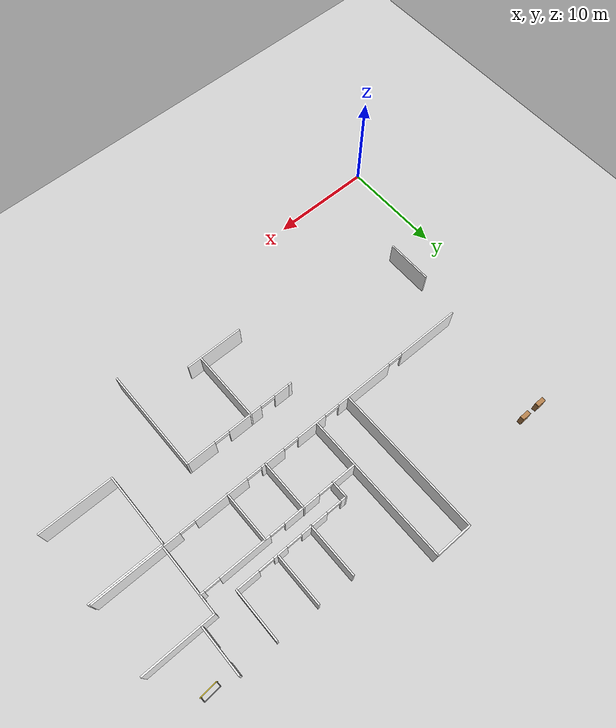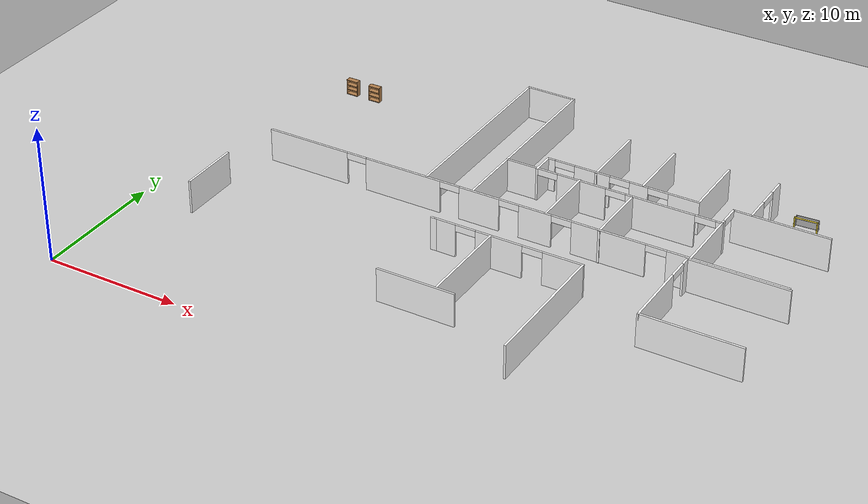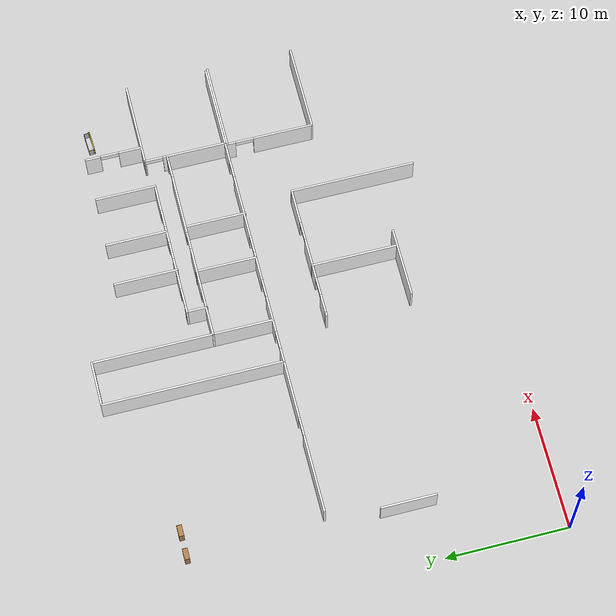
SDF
<sdf version="1.6">
 <world name="default">
  <model name="ground_plane">
   <static>1</static>
   <link name="link">
    <collision name="collision">
     <geometry><plane><normal>0 0 1</normal><size>100 100</size></plane></geometry>
     <surface><friction><ode><mu>100</mu><mu2>50</mu2></ode></friction></surface>
    </collision>
    <visual name="visual">
     <cast_shadows>0</cast_shadows>
     <geometry><plane><normal>0 0 1</normal><size>100 100</size></plane></geometry>
     <material>
      <script>
       <uri>model://office_env/materials/scripts</uri>
       <uri>model://office_env/materials/textures</uri>
       <name>wall</name>
      </script>
     </material>
    </visual>
   </link>
  </model>
  <model name="aule_N">
   <pose>0.1887 -1.4289 0 0 -0 0</pose>
   <link name="Wall_102">
    <collision name="Wall_102_Collision">
     <geometry><box><size>10.25 0.15 2.5</size></box></geometry>
     <pose>0 0 1.25 0 -0 0</pose>
    </collision>
    <visual name="Wall_102_Visual">
     <pose>0 0 1.25 0 -0 0</pose>
     <geometry><box><size>10.25 0.15 2.5</size></box></geometry>
     <material>
      <script>
       <uri>model://office_env/materials/scripts</uri>
       <uri>model://office_env/materials/textures</uri>
       <name>wall</name>
      </script>
      <ambient>1 1 1 1</ambient>
     </material>
    </visual>
    <pose>31.8169 10.3497 0 0 -0 1.5708</pose>
   </link>
   <link name="Wall_103">
    <pose>26.3919 15.3997 0 0 -0 3.14159</pose>
    <visual name="Wall_103_Visual_0">
     <pose>-4.01282 0 1.25 0 -0 0</pose>
     <geometry><box><size>2.97436 0.15 2.5</size></box></geometry>
     <material>
      <script>
       <uri>model://office_env/materials/scripts</uri>
       <uri>model://office_env/materials/textures</uri>
       <name>wall</name>
      </script>
      <ambient>1 1 1 1</ambient>
     </material>
    </visual>
    <collision name="Wall_103_Collision_0">
     <geometry><box><size>2.97436 0.15 2.5</size></box></geometry>
     <pose>-4.01282 0 1.25 0 -0 0</pose>
    </collision>
    <visual name="Wall_103_Visual_1">
     <pose>0.712222 0 1.25 0 -0 0</pose>
     <geometry><box><size>3.47573 0.15 2.5</size></box></geometry>
     <material>
      <script>
       <uri>model://office_env/materials/scripts</uri>
       <uri>model://office_env/materials/textures</uri>
       <name>wall</name>
      </script>
      <ambient>1 1 1 1</ambient>
     </material>
    </visual>
    <collision name="Wall_103_Collision_1">
     <geometry><box><size>3.47573 0.15 2.5</size></box></geometry>
     <pose>0.712222 0 1.25 0 -0 0</pose>
    </collision>
    <visual name="Wall_103_Visual_2">
     <pose>4.72504 0 1.25 0 -0 0</pose>
     <geometry><box><size>1.54991 0.15 2.5</size></box></geometry>
     <material>
      <script>
       <uri>model://office_env/materials/scripts</uri>
       <uri>model://office_env/materials/textures</uri>
       <name>wall</name>
      </script>
      <ambient>1 1 1 1</ambient>
     </material>
    </visual>
    <collision name="Wall_103_Collision_2">
     <geometry><box><size>1.54991 0.15 2.5</size></box></geometry>
     <pose>4.72504 0 1.25 0 -0 0</pose>
    </collision>
    <visual name="Wall_103_Visual_3">
     <pose>-1.77564 0 2.25 0 -0 0</pose>
     <geometry><box><size>1.5 0.15 0.5</size></box></geometry>
     <material>
      <script>
       <uri>model://office_env/materials/scripts</uri>
       <uri>model://office_env/materials/textures</uri>
       <name>wall</name>
      </script>
      <ambient>1 1 1 1</ambient>
     </material>
    </visual>
    <collision name="Wall_103_Collision_3">
     <geometry><box><size>1.5 0.15 0.5</size></box></geometry>
     <pose>-1.77564 0 2.25 0 -0 0</pose>
    </collision>
    <visual name="Wall_103_Visual_4">
     <pose>3.20009 0 2.25 0 -0 0</pose>
     <geometry><box><size>1.5 0.15 0.5</size></box></geometry>
     <material>
      <script>
       <uri>model://office_env/materials/scripts</uri>
       <uri>model://office_env/materials/textures</uri>
       <name>wall</name>
      </script>
      <ambient>1 1 1 1</ambient>
     </material>
    </visual>
    <collision name="Wall_103_Collision_4">
     <geometry><box><size>1.5 0.15 0.5</size></box></geometry>
     <pose>3.20009 0 2.25 0 -0 0</pose>
    </collision>
   </link>
   <link name="Wall_104">
    <collision name="Wall_104_Collision">
     <geometry><box><size>0.5 0.15 2.5</size></box></geometry>
     <pose>0 0 1.25 0 -0 0</pose>
    </collision>
    <visual name="Wall_104_Visual">
     <pose>0 0 1.25 0 -0 0</pose>
     <geometry><box><size>0.5 0.15 2.5</size></box></geometry>
     <material>
      <script>
       <uri>model://office_env/materials/scripts</uri>
       <uri>model://office_env/materials/textures</uri>
       <name>wall</name>
      </script>
      <ambient>1 1 1 1</ambient>
     </material>
    </visual>
    <pose>20.7919 15.3997 0 0 -0 3.14159</pose>
   </link>
   <link name="Wall_106">
    <collision name="Wall_106_Collision">
     <geometry><box><size>7 0.15 2.5</size></box></geometry>
     <pose>0 0 1.25 0 -0 0</pose>
    </collision>
    <visual name="Wall_106_Visual">
     <pose>0 0 1.25 0 -0 0</pose>
     <geometry><box><size>7 0.15 2.5</size></box></geometry>
     <material>
      <script>
       <uri>model://office_env/materials/scripts</uri>
       <uri>model://office_env/materials/textures</uri>
       <name>wall</name>
      </script>
      <ambient>1 1 1 1</ambient>
     </material>
    </visual>
    <pose>25.0644 11.9766 0 0 0 -1.5708</pose>
   </link>
   <link name="Wall_119">
    <pose>24.6226 19.6001 0 0 -0 0</pose>
    <visual name="Wall_119_Visual_0">
     <pose>-16.4435 0 1.25 0 -0 0</pose>
     <geometry><box><size>6.36296 0.15 2.5</size></box></geometry>
     <material>
      <script>
       <uri>model://office_env/materials/scripts</uri>
       <uri>model://office_env/materials/textures</uri>
       <name>wall</name>
      </script>
      <ambient>1 1 1 1</ambient>
     </material>
    </visual>
    <collision name="Wall_119_Collision_0">
     <geometry><box><size>6.36296 0.15 2.5</size></box></geometry>
     <pose>-16.4435 0 1.25 0 -0 0</pose>
    </collision>
    <visual name="Wall_119_Visual_1">
     <pose>-8.80227 0 1.25 0 -0 0</pose>
     <geometry><box><size>5.91956 0.15 2.5</size></box></geometry>
     <material>
      <script>
       <uri>model://office_env/materials/scripts</uri>
       <uri>model://office_env/materials/textures</uri>
       <name>wall</name>
      </script>
      <ambient>1 1 1 1</ambient>
     </material>
    </visual>
    <collision name="Wall_119_Collision_1">
     <geometry><box><size>5.91956 0.15 2.5</size></box></geometry>
     <pose>-8.80227 0 1.25 0 -0 0</pose>
    </collision>
    <visual name="Wall_119_Visual_2">
     <pose>-2.80072 0 1.25 0 -0 0</pose>
     <geometry><box><size>3.08352 0.15 2.5</size></box></geometry>
     <material>
      <script>
       <uri>model://office_env/materials/scripts</uri>
       <uri>model://office_env/materials/textures</uri>
       <name>wall</name>
      </script>
      <ambient>1 1 1 1</ambient>
     </material>
    </visual>
    <collision name="Wall_119_Collision_2">
     <geometry><box><size>3.08352 0.15 2.5</size></box></geometry>
     <pose>-2.80072 0 1.25 0 -0 0</pose>
    </collision>
    <visual name="Wall_119_Visual_3">
     <pose>1.4683 0 1.25 0 -0 0</pose>
     <geometry><box><size>2.45453 0.15 2.5</size></box></geometry>
     <material>
      <script>
       <uri>model://office_env/materials/scripts</uri>
       <uri>model://office_env/materials/textures</uri>
       <name>wall</name>
      </script>
      <ambient>1 1 1 1</ambient>
     </material>
    </visual>
    <collision name="Wall_119_Collision_3">
     <geometry><box><size>2.45453 0.15 2.5</size></box></geometry>
     <pose>1.4683 0 1.25 0 -0 0</pose>
    </collision>
    <visual name="Wall_119_Visual_4">
     <pose>6.88834 0 1.25 0 -0 0</pose>
     <geometry><box><size>5.38554 0.15 2.5</size></box></geometry>
     <material>
      <script>
       <uri>model://office_env/materials/scripts</uri>
       <uri>model://office_env/materials/textures</uri>
       <name>wall</name>
      </script>
      <ambient>1 1 1 1</ambient>
     </material>
    </visual>
    <collision name="Wall_119_Collision_4">
     <geometry><box><size>5.38554 0.15 2.5</size></box></geometry>
     <pose>6.88834 0 1.25 0 -0 0</pose>
    </collision>
    <visual name="Wall_119_Visual_5">
     <pose>15.3531 0 1.25 0 -0 0</pose>
     <geometry><box><size>8.54389 0.15 2.5</size></box></geometry>
     <material>
      <script>
       <uri>model://office_env/materials/scripts</uri>
       <uri>model://office_env/materials/textures</uri>
       <name>wall</name>
      </script>
      <ambient>1 1 1 1</ambient>
     </material>
    </visual>
    <collision name="Wall_119_Collision_5">
     <geometry><box><size>8.54389 0.15 2.5</size></box></geometry>
     <pose>15.3531 0 1.25 0 -0 0</pose>
    </collision>
    <visual name="Wall_119_Visual_6">
     <pose>-12.512 0 2.25 0 -0 0</pose>
     <geometry><box><size>1.5 0.15 0.5</size></box></geometry>
     <material>
      <script>
       <uri>model://office_env/materials/scripts</uri>
       <uri>model://office_env/materials/textures</uri>
       <name>wall</name>
      </script>
      <ambient>1 1 1 1</ambient>
     </material>
    </visual>
    <collision name="Wall_119_Collision_6">
     <geometry><box><size>1.5 0.15 0.5</size></box></geometry>
     <pose>-12.512 0 2.25 0 -0 0</pose>
    </collision>
    <visual name="Wall_119_Visual_7">
     <pose>-5.09248 0 2.25 0 -0 0</pose>
     <geometry><box><size>1.5 0.15 0.5</size></box></geometry>
     <material>
      <script>
       <uri>model://office_env/materials/scripts</uri>
       <uri>model://office_env/materials/textures</uri>
       <name>wall</name>
      </script>
      <ambient>1 1 1 1</ambient>
     </material>
    </visual>
    <collision name="Wall_119_Collision_7">
     <geometry><box><size>1.5 0.15 0.5</size></box></geometry>
     <pose>-5.09248 0 2.25 0 -0 0</pose>
    </collision>
    <visual name="Wall_119_Visual_8">
     <pose>-0.508963 0 2.25 0 -0 0</pose>
     <geometry><box><size>1.5 0.15 0.5</size></box></geometry>
     <material>
      <script>
       <uri>model://office_env/materials/scripts</uri>
       <uri>model://office_env/materials/textures</uri>
       <name>wall</name>
      </script>
      <ambient>1 1 1 1</ambient>
     </material>
    </visual>
    <collision name="Wall_119_Collision_8">
     <geometry><box><size>1.5 0.15 0.5</size></box></geometry>
     <pose>-0.508963 0 2.25 0 -0 0</pose>
    </collision>
    <visual name="Wall_119_Visual_9">
     <pose>3.44557 0 2.25 0 -0 0</pose>
     <geometry><box><size>1.5 0.15 0.5</size></box></geometry>
     <material>
      <script>
       <uri>model://office_env/materials/scripts</uri>
       <uri>model://office_env/materials/textures</uri>
       <name>wall</name>
      </script>
      <ambient>1 1 1 1</ambient>
     </material>
    </visual>
    <collision name="Wall_119_Collision_9">
     <geometry><box><size>1.5 0.15 0.5</size></box></geometry>
     <pose>3.44557 0 2.25 0 -0 0</pose>
    </collision>
    <visual name="Wall_119_Visual_10">
     <pose>10.3311 0 2.25 0 -0 0</pose>
     <geometry><box><size>1.5 0.15 0.5</size></box></geometry>
     <material>
      <script>
       <uri>model://office_env/materials/scripts</uri>
       <uri>model://office_env/materials/textures</uri>
       <name>wall</name>
      </script>
      <ambient>1 1 1 1</ambient>
     </material>
    </visual>
    <collision name="Wall_119_Collision_10">
     <geometry><box><size>1.5 0.15 0.5</size></box></geometry>
     <pose>10.3311 0 2.25 0 -0 0</pose>
    </collision>
   </link>
   <link name="Wall_142">
    <collision name="Wall_142_Collision">
     <geometry><box><size>14.75 0.15 2.5</size></box></geometry>
     <pose>0 0 1.25 0 -0 0</pose>
    </collision>
    <visual name="Wall_142_Visual">
     <pose>0 0 1.25 0 -0 0</pose>
     <geometry><box><size>14.75 0.15 2.5</size></box></geometry>
     <material>
      <script>
       <uri>model://office_env/materials/scripts</uri>
       <uri>model://office_env/materials/textures</uri>
       <name>wall</name>
      </script>
      <ambient>1 1 1 1</ambient>
     </material>
    </visual>
    <pose>17.6842 26.9006 0 0 -0 1.5708</pose>
   </link>
   <link name="Wall_143">
    <collision name="Wall_143_Collision">
     <geometry><box><size>3.75 0.15 2.5</size></box></geometry>
     <pose>0 0 1.25 0 -0 0</pose>
    </collision>
    <visual name="Wall_143_Visual">
     <pose>0 0 1.25 0 -0 0</pose>
     <geometry><box><size>3.75 0.15 2.5</size></box></geometry>
     <material>
      <script>
       <uri>model://office_env/materials/scripts</uri>
       <uri>model://office_env/materials/textures</uri>
       <name>wall</name>
      </script>
      <ambient>1 1 1 1</ambient>
     </material>
    </visual>
    <pose>19.4842 34.2006 0 0 -0 0</pose>
   </link>
   <link name="Wall_144">
    <collision name="Wall_144_Collision">
     <geometry><box><size>14.75 0.15 2.5</size></box></geometry>
     <pose>0 0 1.25 0 -0 0</pose>
    </collision>
    <visual name="Wall_144_Visual">
     <pose>0 0 1.25 0 -0 0</pose>
     <geometry><box><size>14.75 0.15 2.5</size></box></geometry>
     <material>
      <script>
       <uri>model://office_env/materials/scripts</uri>
       <uri>model://office_env/materials/textures</uri>
       <name>wall</name>
      </script>
      <ambient>1 1 1 1</ambient>
     </material>
    </visual>
    <pose>21.2842 26.9006 0 0 0 -1.5708</pose>
   </link>
   <link name="Wall_149">
    <collision name="Wall_149_Collision">
     <geometry><box><size>4.5 0.15 2.5</size></box></geometry>
     <pose>0 0 1.25 0 -0 0</pose>
    </collision>
    <visual name="Wall_149_Visual">
     <pose>0 0 1.25 0 -0 0</pose>
     <geometry><box><size>4.5 0.15 2.5</size></box></geometry>
     <material>
      <script>
       <uri>model://office_env/materials/scripts</uri>
       <uri>model://office_env/materials/textures</uri>
       <name>wall</name>
      </script>
      <ambient>1 1 1 1</ambient>
     </material>
    </visual>
    <pose>4.2241 13.1481 0 0 -0 1.5708</pose>
   </link>
   <link name="Wall_151">
    <pose>37.2203 15.8955 0 0 -0 1.5708</pose>
    <visual name="Wall_151_Visual_0">
     <pose>-1.12447 0 1.25 0 -0 0</pose>
     <geometry><box><size>5.00105 0.15 2.5</size></box></geometry>
     <material>
      <script>
       <uri>model://office_env/materials/scripts</uri>
       <uri>model://office_env/materials/textures</uri>
       <name>wall</name>
      </script>
      <ambient>1 1 1 1</ambient>
     </material>
    </visual>
    <collision name="Wall_151_Collision_0">
     <geometry><box><size>5.00105 0.15 2.5</size></box></geometry>
     <pose>-1.12447 0 1.25 0 -0 0</pose>
    </collision>
    <visual name="Wall_151_Visual_1">
     <pose>3.25053 0 1.25 0 -0 0</pose>
     <geometry><box><size>0.748949 0.15 2.5</size></box></geometry>
     <material>
      <script>
       <uri>model://office_env/materials/scripts</uri>
       <uri>model://office_env/materials/textures</uri>
       <name>wall</name>
      </script>
      <ambient>1 1 1 1</ambient>
     </material>
    </visual>
    <collision name="Wall_151_Collision_1">
     <geometry><box><size>0.748949 0.15 2.5</size></box></geometry>
     <pose>3.25053 0 1.25 0 -0 0</pose>
    </collision>
    <visual name="Wall_151_Visual_2">
     <pose>2.12605 0 2.25 0 -0 0</pose>
     <geometry><box><size>1.5 0.15 0.5</size></box></geometry>
     <material>
      <script>
       <uri>model://office_env/materials/scripts</uri>
       <uri>model://office_env/materials/textures</uri>
       <name>wall</name>
      </script>
      <ambient>1 1 1 1</ambient>
     </material>
    </visual>
    <collision name="Wall_151_Collision_2">
     <geometry><box><size>1.5 0.15 0.5</size></box></geometry>
     <pose>2.12605 0 2.25 0 -0 0</pose>
    </collision>
   </link>
   <link name="Wall_152">
    <collision name="Wall_152_Collision">
     <geometry><box><size>7.25 0.15 2.5</size></box></geometry>
     <pose>0 0 1.25 0 -0 0</pose>
    </collision>
    <visual name="Wall_152_Visual">
     <pose>0 0 1.25 0 -0 0</pose>
     <geometry><box><size>7.25 0.15 2.5</size></box></geometry>
     <material>
      <script>
       <uri>model://office_env/materials/scripts</uri>
       <uri>model://office_env/materials/textures</uri>
       <name>wall</name>
      </script>
      <ambient>1 1 1 1</ambient>
     </material>
    </visual>
    <pose>40.7703 19.4455 0 0 -0 0</pose>
   </link>
   <link name="Wall_154">
    <pose>29.3256 24.4418 0 0 -0 0</pose>
    <visual name="Wall_154_Visual_0">
     <pose>-6.88088 0 1.25 0 -0 0</pose>
     <geometry><box><size>2.48824 0.15 2.5</size></box></geometry>
     <material>
      <script>
       <uri>model://office_env/materials/scripts</uri>
       <uri>model://office_env/materials/textures</uri>
       <name>wall</name>
      </script>
      <ambient>1 1 1 1</ambient>
     </material>
    </visual>
    <collision name="Wall_154_Collision_0">
     <geometry><box><size>2.48824 0.15 2.5</size></box></geometry>
     <pose>-6.88088 0 1.25 0 -0 0</pose>
    </collision>
    <visual name="Wall_154_Visual_1">
     <pose>-2.30449 0 1.25 0 -0 0</pose>
     <geometry><box><size>3.66454 0.15 2.5</size></box></geometry>
     <material>
      <script>
       <uri>model://office_env/materials/scripts</uri>
       <uri>model://office_env/materials/textures</uri>
       <name>wall</name>
      </script>
      <ambient>1 1 1 1</ambient>
     </material>
    </visual>
    <collision name="Wall_154_Collision_1">
     <geometry><box><size>3.66454 0.15 2.5</size></box></geometry>
     <pose>-2.30449 0 1.25 0 -0 0</pose>
    </collision>
    <visual name="Wall_154_Visual_2">
     <pose>3.58098 0 1.25 0 -0 0</pose>
     <geometry><box><size>5.10639 0.15 2.5</size></box></geometry>
     <material>
      <script>
       <uri>model://office_env/materials/scripts</uri>
       <uri>model://office_env/materials/textures</uri>
       <name>wall</name>
      </script>
      <ambient>1 1 1 1</ambient>
     </material>
    </visual>
    <collision name="Wall_154_Collision_2">
     <geometry><box><size>5.10639 0.15 2.5</size></box></geometry>
     <pose>3.58098 0 1.25 0 -0 0</pose>
    </collision>
    <visual name="Wall_154_Visual_3">
     <pose>7.87959 0 1.25 0 -0 0</pose>
     <geometry><box><size>0.490824 0.15 2.5</size></box></geometry>
     <material>
      <script>
       <uri>model://office_env/materials/scripts</uri>
       <uri>model://office_env/materials/textures</uri>
       <name>wall</name>
      </script>
      <ambient>1 1 1 1</ambient>
     </material>
    </visual>
    <collision name="Wall_154_Collision_3">
     <geometry><box><size>0.490824 0.15 2.5</size></box></geometry>
     <pose>7.87959 0 1.25 0 -0 0</pose>
    </collision>
    <visual name="Wall_154_Visual_4">
     <pose>-4.88676 0 2.25 0 -0 0</pose>
     <geometry><box><size>1.5 0.15 0.5</size></box></geometry>
     <material>
      <script>
       <uri>model://office_env/materials/scripts</uri>
       <uri>model://office_env/materials/textures</uri>
       <name>wall</name>
      </script>
      <ambient>1 1 1 1</ambient>
     </material>
    </visual>
    <collision name="Wall_154_Collision_4">
     <geometry><box><size>1.5 0.15 0.5</size></box></geometry>
     <pose>-4.88676 0 2.25 0 -0 0</pose>
    </collision>
    <visual name="Wall_154_Visual_5">
     <pose>0.277782 0 2.25 0 -0 0</pose>
     <geometry><box><size>1.5 0.15 0.5</size></box></geometry>
     <material>
      <script>
       <uri>model://office_env/materials/scripts</uri>
       <uri>model://office_env/materials/textures</uri>
       <name>wall</name>
      </script>
      <ambient>1 1 1 1</ambient>
     </material>
    </visual>
    <collision name="Wall_154_Collision_5">
     <geometry><box><size>1.5 0.15 0.5</size></box></geometry>
     <pose>0.277782 0 2.25 0 -0 0</pose>
    </collision>
    <visual name="Wall_154_Visual_6">
     <pose>6.88418 0 2.25 0 -0 0</pose>
     <geometry><box><size>1.5 0.15 0.5</size></box></geometry>
     <material>
      <script>
       <uri>model://office_env/materials/scripts</uri>
       <uri>model://office_env/materials/textures</uri>
       <name>wall</name>
      </script>
      <ambient>1 1 1 1</ambient>
     </material>
    </visual>
    <collision name="Wall_154_Collision_6">
     <geometry><box><size>1.5 0.15 0.5</size></box></geometry>
     <pose>6.88418 0 2.25 0 -0 0</pose>
    </collision>
   </link>
   <link name="Wall_155">
    <collision name="Wall_155_Collision">
     <geometry><box><size>5 0.15 2.5</size></box></geometry>
     <pose>0 0 1.25 0 -0 0</pose>
    </collision>
    <visual name="Wall_155_Visual">
     <pose>0 0 1.25 0 -0 0</pose>
     <geometry><box><size>5 0.15 2.5</size></box></geometry>
     <material>
      <script>
       <uri>model://office_env/materials/scripts</uri>
       <uri>model://office_env/materials/textures</uri>
       <name>wall</name>
      </script>
      <ambient>1 1 1 1</ambient>
     </material>
    </visual>
    <pose>37.3756 22.0168 0 0 0 -1.5708</pose>
   </link>
   <link name="Wall_157">
    <collision name="Wall_157_Collision">
     <geometry><box><size>5 0.15 2.5</size></box></geometry>
     <pose>0 0 1.25 0 -0 0</pose>
    </collision>
    <visual name="Wall_157_Visual">
     <pose>0 0 1.25 0 -0 0</pose>
     <geometry><box><size>5 0.15 2.5</size></box></geometry>
     <material>
      <script>
       <uri>model://office_env/materials/scripts</uri>
       <uri>model://office_env/materials/textures</uri>
       <name>wall</name>
      </script>
      <ambient>1 1 1 1</ambient>
     </material>
    </visual>
    <pose>26.8585 22.0634 0 0 0 -1.5708</pose>
   </link>
   <link name="Wall_159">
    <collision name="Wall_159_Collision">
     <geometry><box><size>5 0.15 2.5</size></box></geometry>
     <pose>0 0 1.25 0 -0 0</pose>
    </collision>
    <visual name="Wall_159_Visual">
     <pose>0 0 1.25 0 -0 0</pose>
     <geometry><box><size>5 0.15 2.5</size></box></geometry>
     <material>
      <script>
       <uri>model://office_env/materials/scripts</uri>
       <uri>model://office_env/materials/textures</uri>
       <name>wall</name>
      </script>
      <ambient>1 1 1 1</ambient>
     </material>
    </visual>
    <pose>30.8596 21.9703 0 0 0 -1.5708</pose>
   </link>
   <link name="Wall_161">
    <pose>37.3756 25.3668 0 0 -0 1.5708</pose>
    <visual name="Wall_161_Visual_0">
     <pose>-0.779213 0 1.25 0 -0 0</pose>
     <geometry><box><size>0.441574 0.15 2.5</size></box></geometry>
     <material>
      <script>
       <uri>model://office_env/materials/scripts</uri>
       <uri>model://office_env/materials/textures</uri>
       <name>wall</name>
      </script>
      <ambient>1 1 1 1</ambient>
     </material>
    </visual>
    <collision name="Wall_161_Collision_0">
     <geometry><box><size>0.441574 0.15 2.5</size></box></geometry>
     <pose>-0.779213 0 1.25 0 -0 0</pose>
    </collision>
    <visual name="Wall_161_Visual_1">
     <pose>0.970787 0 1.25 0 -0 0</pose>
     <geometry><box><size>0.058426 0.15 2.5</size></box></geometry>
     <material>
      <script>
       <uri>model://office_env/materials/scripts</uri>
       <uri>model://office_env/materials/textures</uri>
       <name>wall</name>
      </script>
      <ambient>1 1 1 1</ambient>
     </material>
    </visual>
    <collision name="Wall_161_Collision_1">
     <geometry><box><size>0.058426 0.15 2.5</size></box></geometry>
     <pose>0.970787 0 1.25 0 -0 0</pose>
    </collision>
    <visual name="Wall_161_Visual_2">
     <pose>0.191574 0 2.25 0 -0 0</pose>
     <geometry><box><size>1.5 0.15 0.5</size></box></geometry>
     <material>
      <script>
       <uri>model://office_env/materials/scripts</uri>
       <uri>model://office_env/materials/textures</uri>
       <name>wall</name>
      </script>
      <ambient>1 1 1 1</ambient>
     </material>
    </visual>
    <collision name="Wall_161_Collision_2">
     <geometry><box><size>1.5 0.15 0.5</size></box></geometry>
     <pose>0.191574 0 2.25 0 -0 0</pose>
    </collision>
   </link>
   <link name="Wall_172">
    <collision name="Wall_172_Collision">
     <geometry><box><size>1.75 0.15 2.5</size></box></geometry>
     <pose>0 0 1.25 0 -0 0</pose>
    </collision>
    <visual name="Wall_172_Visual">
     <pose>0 0 1.25 0 -0 0</pose>
     <geometry><box><size>1.75 0.15 2.5</size></box></geometry>
     <material>
      <script>
       <uri>model://office_env/materials/scripts</uri>
       <uri>model://office_env/materials/textures</uri>
       <name>wall</name>
      </script>
      <ambient>1 1 1 1</ambient>
     </material>
    </visual>
    <pose>23.6484 25.1953 0 0 -0 1.5708</pose>
   </link>
   <link name="Wall_173">
    <pose>29.3234 25.9953 0 0 -0 0</pose>
    <visual name="Wall_173_Visual_0">
     <pose>-5.43624 0 1.25 0 -0 0</pose>
     <geometry><box><size>0.627523 0.15 2.5</size></box></geometry>
     <material>
      <script>
       <uri>model://office_env/materials/scripts</uri>
       <uri>model://office_env/materials/textures</uri>
       <name>wall</name>
      </script>
      <ambient>1 1 1 1</ambient>
     </material>
    </visual>
    <collision name="Wall_173_Collision_0">
     <geometry><box><size>0.627523 0.15 2.5</size></box></geometry>
     <pose>-5.43624 0 1.25 0 -0 0</pose>
    </collision>
    <visual name="Wall_173_Visual_1">
     <pose>-2.27883 0 1.25 0 -0 0</pose>
     <geometry><box><size>2.6873 0.15 2.5</size></box></geometry>
     <material>
      <script>
       <uri>model://office_env/materials/scripts</uri>
       <uri>model://office_env/materials/textures</uri>
       <name>wall</name>
      </script>
      <ambient>1 1 1 1</ambient>
     </material>
    </visual>
    <collision name="Wall_173_Collision_1">
     <geometry><box><size>2.6873 0.15 2.5</size></box></geometry>
     <pose>-2.27883 0 1.25 0 -0 0</pose>
    </collision>
    <visual name="Wall_173_Visual_2">
     <pose>1.25706 0 1.25 0 -0 0</pose>
     <geometry><box><size>1.38448 0.15 2.5</size></box></geometry>
     <material>
      <script>
       <uri>model://office_env/materials/scripts</uri>
       <uri>model://office_env/materials/textures</uri>
       <name>wall</name>
      </script>
      <ambient>1 1 1 1</ambient>
     </material>
    </visual>
    <collision name="Wall_173_Collision_2">
     <geometry><box><size>1.38448 0.15 2.5</size></box></geometry>
     <pose>1.25706 0 1.25 0 -0 0</pose>
    </collision>
    <visual name="Wall_173_Visual_3">
     <pose>4.59965 0 1.25 0 -0 0</pose>
     <geometry><box><size>2.3007 0.15 2.5</size></box></geometry>
     <material>
      <script>
       <uri>model://office_env/materials/scripts</uri>
       <uri>model://office_env/materials/textures</uri>
       <name>wall</name>
      </script>
      <ambient>1 1 1 1</ambient>
     </material>
    </visual>
    <collision name="Wall_173_Collision_3">
     <geometry><box><size>2.3007 0.15 2.5</size></box></geometry>
     <pose>4.59965 0 1.25 0 -0 0</pose>
    </collision>
    <visual name="Wall_173_Visual_4">
     <pose>-4.37248 0 2.25 0 -0 0</pose>
     <geometry><box><size>1.5 0.15 0.5</size></box></geometry>
     <material>
      <script>
       <uri>model://office_env/materials/scripts</uri>
       <uri>model://office_env/materials/textures</uri>
       <name>wall</name>
      </script>
      <ambient>1 1 1 1</ambient>
     </material>
    </visual>
    <collision name="Wall_173_Collision_4">
     <geometry><box><size>1.5 0.15 0.5</size></box></geometry>
     <pose>-4.37248 0 2.25 0 -0 0</pose>
    </collision>
    <visual name="Wall_173_Visual_5">
     <pose>-0.185179 0 2.25 0 -0 0</pose>
     <geometry><box><size>1.5 0.15 0.5</size></box></geometry>
     <material>
      <script>
       <uri>model://office_env/materials/scripts</uri>
       <uri>model://office_env/materials/textures</uri>
       <name>wall</name>
      </script>
      <ambient>1 1 1 1</ambient>
     </material>
    </visual>
    <collision name="Wall_173_Collision_5">
     <geometry><box><size>1.5 0.15 0.5</size></box></geometry>
     <pose>-0.185179 0 2.25 0 -0 0</pose>
    </collision>
    <visual name="Wall_173_Visual_6">
     <pose>2.6993 0 2.25 0 -0 0</pose>
     <geometry><box><size>1.5 0.15 0.5</size></box></geometry>
     <material>
      <script>
       <uri>model://office_env/materials/scripts</uri>
       <uri>model://office_env/materials/textures</uri>
       <name>wall</name>
      </script>
      <ambient>1 1 1 1</ambient>
     </material>
    </visual>
    <collision name="Wall_173_Collision_6">
     <geometry><box><size>1.5 0.15 0.5</size></box></geometry>
     <pose>2.6993 0 2.25 0 -0 0</pose>
    </collision>
   </link>
   <link name="Wall_174">
    <collision name="Wall_174_Collision">
     <geometry><box><size>5 0.15 2.5</size></box></geometry>
     <pose>0 0 1.25 0 -0 0</pose>
    </collision>
    <visual name="Wall_174_Visual">
     <pose>0 0 1.25 0 -0 0</pose>
     <geometry><box><size>5 0.15 2.5</size></box></geometry>
     <material>
      <script>
       <uri>model://office_env/materials/scripts</uri>
       <uri>model://office_env/materials/textures</uri>
       <name>wall</name>
      </script>
      <ambient>1 1 1 1</ambient>
     </material>
    </visual>
    <pose>34.9984 28.4203 0 0 -0 1.5708</pose>
   </link>
   <link name="Wall_176">
    <collision name="Wall_176_Collision">
     <geometry><box><size>5.25 0.15 2.5</size></box></geometry>
     <pose>0 0 1.25 0 -0 0</pose>
    </collision>
    <visual name="Wall_176_Visual">
     <pose>0 0 1.25 0 -0 0</pose>
     <geometry><box><size>5.25 0.15 2.5</size></box></geometry>
     <material>
      <script>
       <uri>model://office_env/materials/scripts</uri>
       <uri>model://office_env/materials/textures</uri>
       <name>wall</name>
      </script>
      <ambient>1 1 1 1</ambient>
     </material>
    </visual>
    <pose>27.3703 28.4806 0 0 -0 1.5708</pose>
   </link>
   <link name="Wall_178">
    <collision name="Wall_178_Collision">
     <geometry><box><size>5 0.15 2.5</size></box></geometry>
     <pose>0 0 1.25 0 -0 0</pose>
    </collision>
    <visual name="Wall_178_Visual">
     <pose>0 0 1.25 0 -0 0</pose>
     <geometry><box><size>5 0.15 2.5</size></box></geometry>
     <material>
      <script>
       <uri>model://office_env/materials/scripts</uri>
       <uri>model://office_env/materials/textures</uri>
       <name>wall</name>
      </script>
      <ambient>1 1 1 1</ambient>
     </material>
    </visual>
    <pose>30.8596 28.4952 0 0 -0 1.5708</pose>
   </link>
   <link name="Wall_182">
    <collision name="Wall_182_Collision">
     <geometry><box><size>7 0.15 2.5</size></box></geometry>
     <pose>0 0 1.25 0 -0 0</pose>
    </collision>
    <visual name="Wall_182_Visual">
     <pose>0 0 1.25 0 -0 0</pose>
     <geometry><box><size>7 0.15 2.5</size></box></geometry>
     <material>
      <script>
       <uri>model://office_env/materials/scripts</uri>
       <uri>model://office_env/materials/textures</uri>
       <name>wall</name>
      </script>
      <ambient>1 1 1 1</ambient>
     </material>
    </visual>
    <pose>40.8006 26.2918 0 0 -0 0</pose>
   </link>
   <link name="Wall_184">
    <pose>38.6756 28.6028 0 0 -0 1.5708</pose>
    <visual name="Wall_184_Visual_0">
     <pose>-1.38657 0 1.25 0 -0 0</pose>
     <geometry><box><size>1.97686 0.15 2.5</size></box></geometry>
     <material>
      <script>
       <uri>model://office_env/materials/scripts</uri>
       <uri>model://office_env/materials/textures</uri>
       <name>wall</name>
      </script>
      <ambient>1 1 1 1</ambient>
     </material>
    </visual>
    <collision name="Wall_184_Collision_0">
     <geometry><box><size>1.97686 0.15 2.5</size></box></geometry>
     <pose>-1.38657 0 1.25 0 -0 0</pose>
    </collision>
    <visual name="Wall_184_Visual_1">
     <pose>1.73843 0 1.25 0 -0 0</pose>
     <geometry><box><size>1.27314 0.15 2.5</size></box></geometry>
     <material>
      <script>
       <uri>model://office_env/materials/scripts</uri>
       <uri>model://office_env/materials/textures</uri>
       <name>wall</name>
      </script>
      <ambient>1 1 1 1</ambient>
     </material>
    </visual>
    <collision name="Wall_184_Collision_1">
     <geometry><box><size>1.27314 0.15 2.5</size></box></geometry>
     <pose>1.73843 0 1.25 0 -0 0</pose>
    </collision>
    <visual name="Wall_184_Visual_2">
     <pose>0.351864 0 2.25 0 -0 0</pose>
     <geometry><box><size>1.5 0.15 0.5</size></box></geometry>
     <material>
      <script>
       <uri>model://office_env/materials/scripts</uri>
       <uri>model://office_env/materials/textures</uri>
       <name>wall</name>
      </script>
      <ambient>1 1 1 1</ambient>
     </material>
    </visual>
    <collision name="Wall_184_Collision_2">
     <geometry><box><size>1.5 0.15 0.5</size></box></geometry>
     <pose>0.351864 0 2.25 0 -0 0</pose>
    </collision>
   </link>
   <link name="Wall_38">
    <collision name="Wall_38_Collision">
     <geometry><box><size>7.25 0.15 2.5</size></box></geometry>
     <pose>0 0 1.25 0 -0 0</pose>
    </collision>
    <visual name="Wall_38_Visual">
     <pose>0 0 1.25 0 -0 0</pose>
     <geometry><box><size>7.25 0.15 2.5</size></box></geometry>
     <material>
      <script>
       <uri>model://office_env/materials/scripts</uri>
       <uri>model://office_env/materials/textures</uri>
       <name>wall</name>
      </script>
      <ambient>1 1 1 1</ambient>
     </material>
    </visual>
    <pose>40.7703 12.3455 0 0 -0 0</pose>
   </link>
   <link name="Wall_70">
    <collision name="Wall_70_Collision">
     <geometry><box><size>5.75 0.15 2.5</size></box></geometry>
     <pose>0 0 1.25 0 -0 0</pose>
    </collision>
    <visual name="Wall_70_Visual">
     <pose>0 0 1.25 0 -0 0</pose>
     <geometry><box><size>5.75 0.15 2.5</size></box></geometry>
     <material>
      <script>
       <uri>model://office_env/materials/scripts</uri>
       <uri>model://office_env/materials/textures</uri>
       <name>wall</name>
      </script>
      <ambient>1 1 1 1</ambient>
     </material>
    </visual>
    <pose>23.5919 8.40989 0 0 -0 0</pose>
   </link>
   <static>1</static>
  </model>
  <model name="bookshelf_1">
   <static>1</static>
   <link name="link">
    <inertial><mass>1</mass></inertial>
    <collision name="back">
     <pose>0 0.005 0.6 0 -0 0</pose>
     <geometry><box><size>0.9 0.01 1.2</size></box></geometry>
    </collision>
    <visual name="visual1">
     <pose>0 0.005 0.6 0 -0 0</pose>
     <geometry><box><size>0.9 0.01 1.2</size></box></geometry>
     <material>
      <script><uri>file://media/materials/scripts/gazebo.material</uri><name>Gazebo/Wood</name></script>
     </material>
    </visual>
    <collision name="left_side">
     <pose>0.45 -0.195 0.6 0 -0 0</pose>
     <geometry><box><size>0.02 0.4 1.2</size></box></geometry>
    </collision>
    <visual name="visual2">
     <pose>0.45 -0.195 0.6 0 -0 0</pose>
     <geometry><box><size>0.02 0.4 1.2</size></box></geometry>
     <material>
      <script><uri>file://media/materials/scripts/gazebo.material</uri><name>Gazebo/Wood</name></script>
     </material>
    </visual>
    <collision name="right_side">
     <pose>-0.45 -0.195 0.6 0 -0 0</pose>
     <geometry><box><size>0.02 0.4 1.2</size></box></geometry>
    </collision>
    <visual name="visual3">
     <pose>-0.45 -0.195 0.6 0 -0 0</pose>
     <geometry><box><size>0.02 0.4 1.2</size></box></geometry>
     <material>
      <script><uri>file://media/materials/scripts/gazebo.material</uri><name>Gazebo/Wood</name></script>
     </material>
    </visual>
    <collision name="bottom">
     <pose>0 -0.195 0.03 0 -0 0</pose>
     <geometry><box><size>0.88 0.4 0.06</size></box></geometry>
    </collision>
    <visual name="visual4">
     <pose>0 -0.195 0.03 0 -0 0</pose>
     <geometry><box><size>0.88 0.4 0.06</size></box></geometry>
     <material>
      <script><uri>file://media/materials/scripts/gazebo.material</uri><name>Gazebo/Wood</name></script>
     </material>
    </visual>
    <collision name="top">
     <pose>0 -0.195 1.19 0 -0 0</pose>
     <geometry><box><size>0.88 0.4 0.02</size></box></geometry>
    </collision>
    <visual name="visual5">
     <pose>0 -0.195 1.19 0 -0 0</pose>
     <geometry><box><size>0.88 0.4 0.02</size></box></geometry>
     <material>
      <script><uri>file://media/materials/scripts/gazebo.material</uri><name>Gazebo/Wood</name></script>
     </material>
    </visual>
    <collision name="low_shelf">
     <pose>0 -0.195 0.43 0 -0 0</pose>
     <geometry><box><size>0.88 0.4 0.02</size></box></geometry>
    </collision>
    <visual name="visual6">
     <pose>0 -0.195 0.43 0 -0 0</pose>
     <geometry><box><size>0.88 0.4 0.02</size></box></geometry>
     <material>
      <script><uri>file://media/materials/scripts/gazebo.material</uri><name>Gazebo/Wood</name></script>
     </material>
    </visual>
    <collision name="high_shelf">
     <pose>0 -0.195 0.8 0 -0 0</pose>
     <geometry><box><size>0.88 0.4 0.02</size></box></geometry>
    </collision>
    <visual name="visual7">
     <pose>0 -0.195 0.8 0 -0 0</pose>
     <geometry><box><size>0.88 0.4 0.02</size></box></geometry>
     <material>
      <script><uri>file://media/materials/scripts/gazebo.material</uri><name>Gazebo/Wood</name></script>
     </material>
    </visual>
   </link>
   <pose>6.87257 29.3246 0 0 -0 0</pose>
  </model>
  <model name="bookshelf_2">
   <static>1</static>
   <link name="link">
    <inertial><mass>1</mass></inertial>
    <collision name="back">
     <pose>0 0.005 0.6 0 -0 0</pose>
     <geometry><box><size>0.9 0.01 1.2</size></box></geometry>
    </collision>
    <visual name="visual1">
     <pose>0 0.005 0.6 0 -0 0</pose>
     <geometry><box><size>0.9 0.01 1.2</size></box></geometry>
     <material>
      <script><uri>file://media/materials/scripts/gazebo.material</uri><name>Gazebo/Wood</name></script>
     </material>
    </visual>
    <collision name="left_side">
     <pose>0.45 -0.195 0.6 0 -0 0</pose>
     <geometry><box><size>0.02 0.4 1.2</size></box></geometry>
    </collision>
    <visual name="visual2">
     <pose>0.45 -0.195 0.6 0 -0 0</pose>
     <geometry><box><size>0.02 0.4 1.2</size></box></geometry>
     <material>
      <script><uri>file://media/materials/scripts/gazebo.material</uri><name>Gazebo/Wood</name></script>
     </material>
    </visual>
    <collision name="right_side">
     <pose>-0.45 -0.195 0.6 0 -0 0</pose>
     <geometry><box><size>0.02 0.4 1.2</size></box></geometry>
    </collision>
    <visual name="visual3">
     <pose>-0.45 -0.195 0.6 0 -0 0</pose>
     <geometry><box><size>0.02 0.4 1.2</size></box></geometry>
     <material>
      <script><uri>file://media/materials/scripts/gazebo.material</uri><name>Gazebo/Wood</name></script>
     </material>
    </visual>
    <collision name="bottom">
     <pose>0 -0.195 0.03 0 -0 0</pose>
     <geometry><box><size>0.88 0.4 0.06</size></box></geometry>
    </collision>
    <visual name="visual4">
     <pose>0 -0.195 0.03 0 -0 0</pose>
     <geometry><box><size>0.88 0.4 0.06</size></box></geometry>
     <material>
      <script><uri>file://media/materials/scripts/gazebo.material</uri><name>Gazebo/Wood</name></script>
     </material>
    </visual>
    <collision name="top">
     <pose>0 -0.195 1.19 0 -0 0</pose>
     <geometry><box><size>0.88 0.4 0.02</size></box></geometry>
    </collision>
    <visual name="visual5">
     <pose>0 -0.195 1.19 0 -0 0</pose>
     <geometry><box><size>0.88 0.4 0.02</size></box></geometry>
     <material>
      <script><uri>file://media/materials/scripts/gazebo.material</uri><name>Gazebo/Wood</name></script>
     </material>
    </visual>
    <collision name="low_shelf">
     <pose>0 -0.195 0.43 0 -0 0</pose>
     <geometry><box><size>0.88 0.4 0.02</size></box></geometry>
    </collision>
    <visual name="visual6">
     <pose>0 -0.195 0.43 0 -0 0</pose>
     <geometry><box><size>0.88 0.4 0.02</size></box></geometry>
     <material>
      <script><uri>file://media/materials/scripts/gazebo.material</uri><name>Gazebo/Wood</name></script>
     </material>
    </visual>
    <collision name="high_shelf">
     <pose>0 -0.195 0.8 0 -0 0</pose>
     <geometry><box><size>0.88 0.4 0.02</size></box></geometry>
    </collision>
    <visual name="visual7">
     <pose>0 -0.195 0.8 0 -0 0</pose>
     <geometry><box><size>0.88 0.4 0.02</size></box></geometry>
     <material>
      <script><uri>file://media/materials/scripts/gazebo.material</uri><name>Gazebo/Wood</name></script>
     </material>
    </visual>
   </link>
   <pose>4.97402 29.3179 0 0 -0 0</pose>
  </model>
  <model name="RoboCup 2014 SPL Goal">
   <static>1</static>
   <link name="left_post">
    <pose>0 0.8 0.45 0 -0 0</pose>
    <collision name="collision">
     <geometry><cylinder><radius>0.05</radius><length>0.9</length></cylinder></geometry>
    </collision>
    <visual name="visual">
     <geometry><cylinder><radius>0.05</radius><length>0.9</length></cylinder></geometry>
     <material>
      <script><uri>file://media/materials/scripts/gazebo.material</uri><name>Gazebo/ZincYellow</name></script>
     </material>
    </visual>
   </link>
   <link name="left_support_horiz_lower">
    <pose>0.24 0.8 0.01 0 -0 0</pose>
    <collision name="collision"><geometry><box><size>0.38 0.02 0.02</size></box></geometry></collision>
    <visual name="visual">
     <geometry><box><size>0.38 0.02 0.02</size></box></geometry>
     <material>
      <script><uri>file://media/materials/scripts/gazebo.material</uri><name>Gazebo/White</name></script>
     </material>
    </visual>
   </link>
   <link name="left_support_horiz_upper">
    <pose>0.24 0.8 0.79 0 -0 0</pose>
    <collision name="collision"><geometry><box><size>0.38 0.02 0.02</size></box></geometry></collision>
    <visual name="visual">
     <geometry><box><size>0.38 0.02 0.02</size></box></geometry>
     <material>
      <script><uri>file://media/materials/scripts/gazebo.material</uri><name>Gazebo/White</name></script>
     </material>
    </visual>
   </link>
   <link name="left_support_vertical">
    <pose>0.44 0.8 0.4 3.14159 1.57079 3.14159</pose>
    <collision name="collision"><geometry><box><size>0.8 0.02 0.02</size></box></geometry></collision>
    <visual name="visual">
     <geometry><box><size>0.8 0.02 0.02</size></box></geometry>
     <material>
      <script><uri>file://media/materials/scripts/gazebo.material</uri><name>Gazebo/White</name></script>
     </material>
    </visual>
   </link>
   <link name="right_support_horiz_lower">
    <pose>0.24 -0.8 0.01 0 -0 0</pose>
    <collision name="collision"><geometry><box><size>0.38 0.02 0.02</size></box></geometry></collision>
    <visual name="visual">
     <geometry><box><size>0.38 0.02 0.02</size></box></geometry>
     <material>
      <script><uri>file://media/materials/scripts/gazebo.material</uri><name>Gazebo/White</name></script>
     </material>
    </visual>
   </link>
   <link name="right_support_horiz_upper">
    <pose>0.24 -0.8 0.79 0 -0 0</pose>
    <collision name="collision"><geometry><box><size>0.38 0.02 0.02</size></box></geometry></collision>
    <visual name="visual">
     <geometry><box><size>0.38 0.02 0.02</size></box></geometry>
     <material>
      <script><uri>file://media/materials/scripts/gazebo.material</uri><name>Gazebo/White</name></script>
     </material>
    </visual>
   </link>
   <link name="right_support_vertical">
    <pose>0.44 -0.8 0.4 3.14159 1.57079 3.14159</pose>
    <collision name="collision"><geometry><box><size>0.8 0.02 0.02</size></box></geometry></collision>
    <visual name="visual">
     <geometry><box><size>0.8 0.02 0.02</size></box></geometry>
     <material>
      <script><uri>file://media/materials/scripts/gazebo.material</uri><name>Gazebo/White</name></script>
     </material>
    </visual>
   </link>
   <link name="center_support_horiz_lower">
    <pose>0.44 0 0.01 3.14159 1.57079 3.14159</pose>
    <collision name="collision"><geometry><box><size>0.02 1.58 0.02</size></box></geometry></collision>
    <visual name="visual">
     <geometry><box><size>0.02 1.58 0.02</size></box></geometry>
     <material>
      <script><uri>file://media/materials/scripts/gazebo.material</uri><name>Gazebo/White</name></script>
     </material>
    </visual>
   </link>
   <link name="center_support_horiz_upper">
    <pose>0.44 0 0.79 3.14159 1.57079 3.14159</pose>
    <collision name="collision"><geometry><box><size>0.02 1.58 0.02</size></box></geometry></collision>
    <visual name="visual">
     <geometry><box><size>0.02 1.58 0.02</size></box></geometry>
     <material>
      <script><uri>file://media/materials/scripts/gazebo.material</uri><name>Gazebo/White</name></script>
     </material>
    </visual>
   </link>
   <link name="right_post">
    <pose>0 -0.8 0.45 0 -0 0</pose>
    <collision name="collision">
     <geometry><cylinder><radius>0.05</radius><length>0.9</length></cylinder></geometry>
    </collision>
    <visual name="visual">
     <geometry><cylinder><radius>0.05</radius><length>0.9</length></cylinder></geometry>
     <material>
      <script><uri>file://media/materials/scripts/gazebo.material</uri><name>Gazebo/ZincYellow</name></script>
     </material>
    </visual>
   </link>
   <link name="crossbar">
    <pose>0 0 0.85 1.57 1.57 0</pose>
    <collision name="collision">
     <geometry><cylinder><radius>0.05</radius><length>1.5</length></cylinder></geometry>
    </collision>
    <visual name="visual">
     <geometry><cylinder><radius>0.05</radius><length>1.5</length></cylinder></geometry>
     <material>
      <script><uri>file://media/materials/scripts/gazebo.material</uri><name>Gazebo/ZincYellow</name></script>
     </material>
    </visual>
   </link>
   <link name="center_net">
    <pose>0.44 0 0.4 0 -0 0</pose>
    <collision name="collision"><geometry><box><size>0.01 1.6 0.8</size></box></geometry></collision>
    <visual name="visual">
     <geometry><box><size>0.01 1.6 0.8</size></box></geometry>
     <material>
      <script>
       <uri>model://robocup09_spl_field/materials/scripts/</uri>
       <uri>model://robocup09_spl_field/materials/textures/</uri>
       <name>RoboCup/Net</name>
      </script>
     </material>
    </visual>
   </link>
   <link name="left_net">
    <pose>0.24 0.8 0.4 0 -0 0</pose>
    <collision name="collision"><geometry><box><size>0.38 0.01 0.76</size></box></geometry></collision>
    <visual name="visual">
     <geometry><box><size>0.38 0.01 0.76</size></box></geometry>
     <material>
      <script>
       <uri>model://robocup09_spl_field/materials/scripts/</uri>
       <uri>model://robocup09_spl_field/materials/textures/</uri>
       <name>RoboCup/Net</name>
      </script>
     </material>
    </visual>
   </link>
   <link name="right_net">
    <pose>0.24 -0.8 0.4 0 -0 0</pose>
    <collision name="collision"><geometry><box><size>0.38 0.01 0.76</size></box></geometry></collision>
    <visual name="visual">
     <geometry><box><size>0.38 0.01 0.76</size></box></geometry>
     <material>
      <script>
       <uri>model://robocup09_spl_field/materials/scripts/</uri>
       <uri>model://robocup09_spl_field/materials/textures/</uri>
       <name>RoboCup/Net</name>
      </script>
     </material>
    </visual>
   </link>
   <pose>41.3092 28.6447 0 0 -0 1.63389</pose>
  </model>
 </world>
</sdf>
